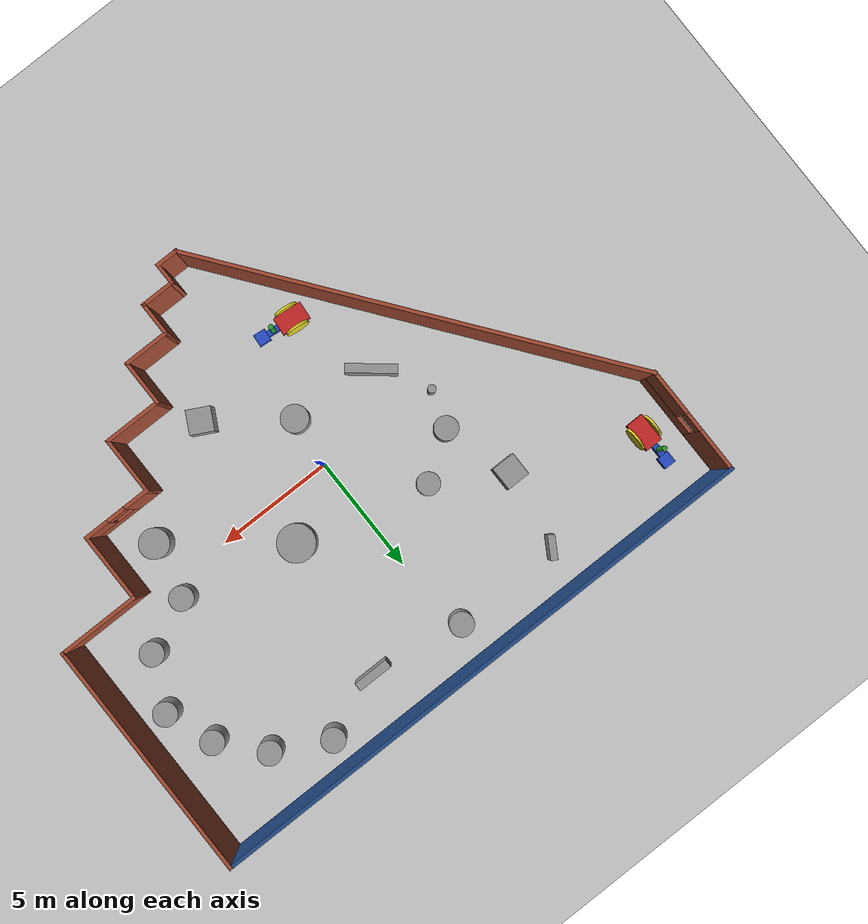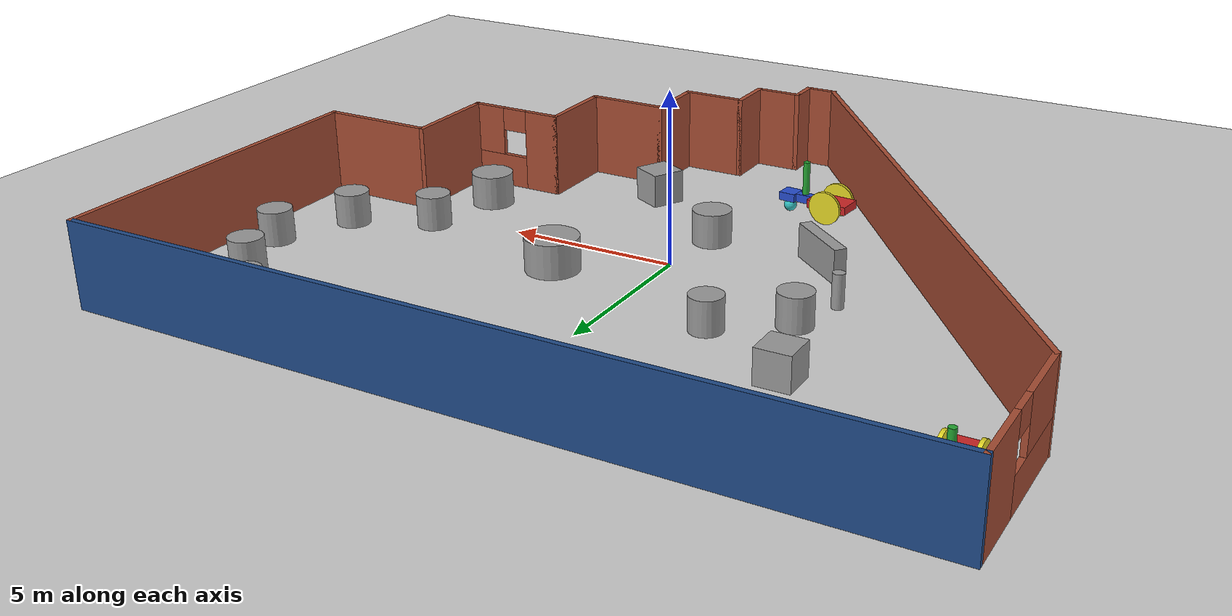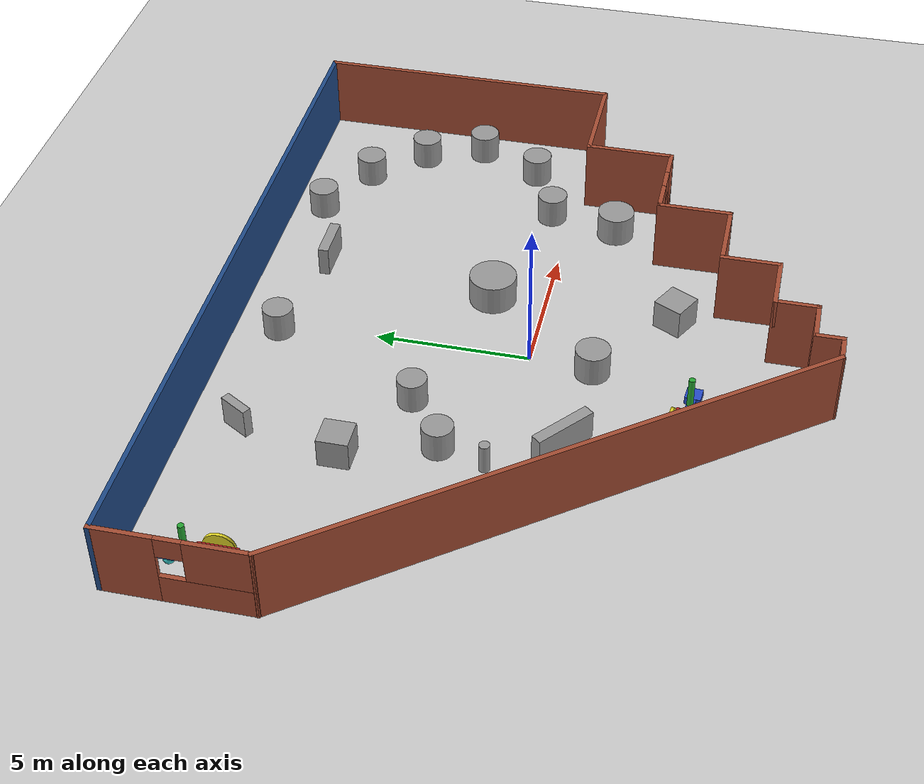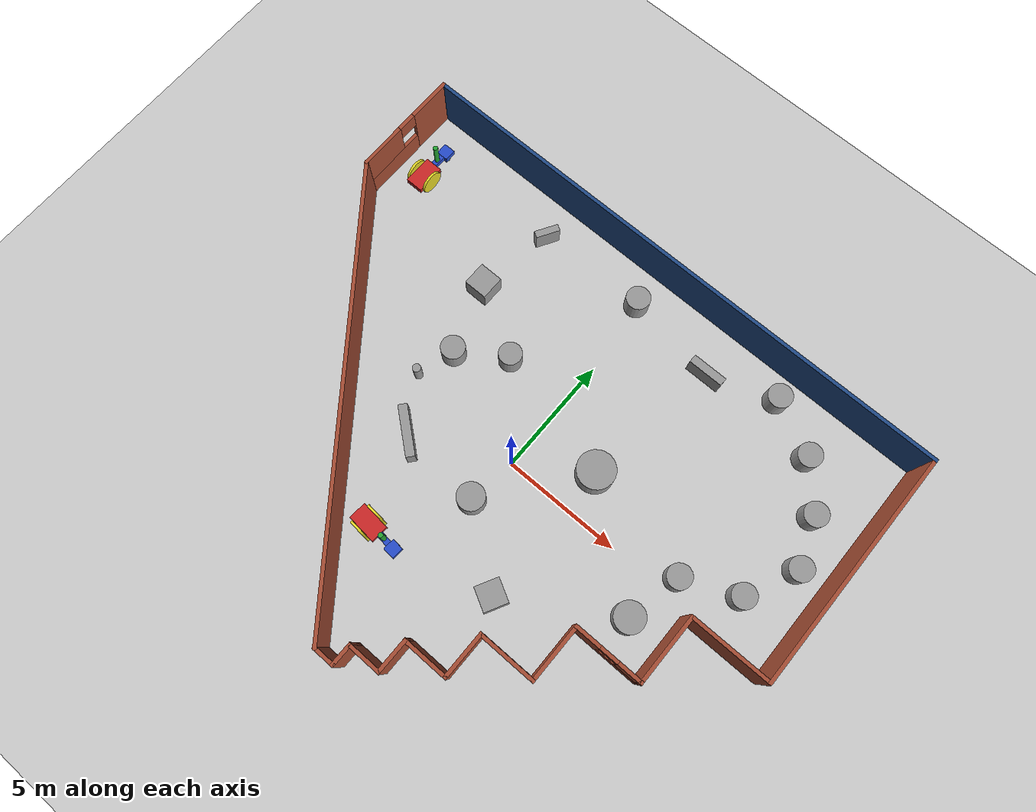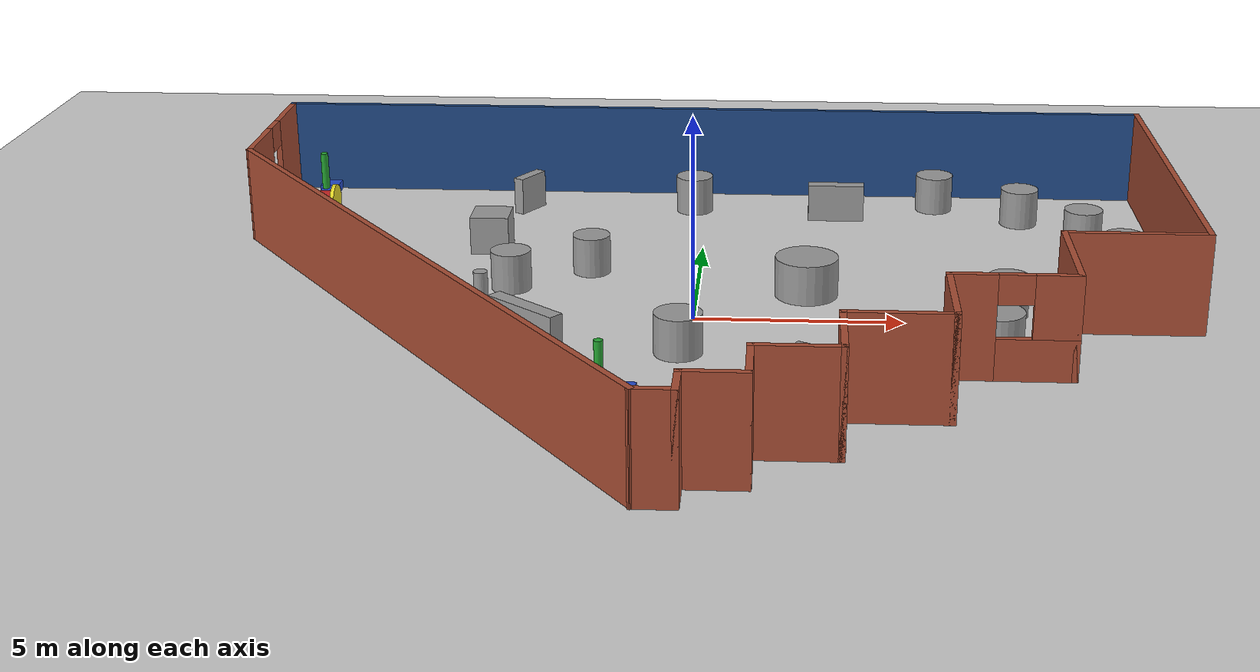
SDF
<sdf version="1.6">
 <world name="default">
  <light name="sun" type="directional">
   <pose>0 0 10 0 -0 0</pose>
   <diffuse>0.8 0.8 0.8 1</diffuse>
   <specular>0.2 0.2 0.2 1</specular>
   <attenuation>
    <range>1000</range>
    <constant>0.9</constant>
    <linear>0.01</linear>
    <quadratic>0.001</quadratic>
   </attenuation>
   <direction>-0.5 0.1 -0.9</direction>
  </light>
  <model name="ground_plane">
   <static>1</static>
   <link name="link">
    <collision name="collision">
     <geometry><plane><normal>0 0 1</normal><size>100 100</size></plane></geometry>
     <surface>
      <contact><collide_bitmask>65535</collide_bitmask></contact>
      <friction><ode><mu>100</mu><mu2>50</mu2></ode></friction>
     </surface>
    </collision>
    <visual name="visual">
     <cast_shadows>0</cast_shadows>
     <geometry><plane><normal>0 0 1</normal><size>100 100</size></plane></geometry>
     <material>
      <script><uri>file://media/materials/scripts/gazebo.material</uri><name>Gazebo/Grey</name></script>
     </material>
    </visual>
   </link>
  </model>
  <gravity>0 0 -9.8</gravity>
  <magnetic_field>6e-06 2.3e-05 -4.2e-05</magnetic_field>
  <atmosphere type="adiabatic"/>
  <physics name="default_physics" default="0" type="ode">
   <max_step_size>0.001</max_step_size>
   <real_time_factor>1</real_time_factor>
   <real_time_update_rate>1000</real_time_update_rate>
  </physics>
  <scene><ambient>0.4 0.4 0.4 1</ambient><background>0.7 0.7 0.7 1</background><shadows>1</shadows></scene>
  <audio><device>default</device></audio>
  <spherical_coordinates>
   <surface_model>EARTH_WGS84</surface_model>
   <latitude_deg>0</latitude_deg>
   <longitude_deg>0</longitude_deg>
   <elevation>0</elevation>
   <heading_deg>0</heading_deg>
  </spherical_coordinates>
  <model name="building_1">
   <pose>-0.033049 0.038892 0 0 -0 0</pose>
   <link name="Wall_0">
    <collision name="Wall_0_Collision">
     <geometry><box><size>1 0.15 2.5</size></box></geometry>
     <pose>0 0 1.25 0 -0 0</pose>
    </collision>
    <visual name="Wall_0_Visual">
     <pose>0 0 1.25 0 -0 0</pose>
     <geometry><box><size>1 0.15 2.5</size></box></geometry>
     <material>
      <script><uri>file://media/materials/scripts/gazebo.material</uri><name>Gazebo/Bricks</name></script>
      <ambient>1 1 1 1</ambient>
     </material>
     <meta><layer>0</layer></meta>
    </visual>
    <pose>-0.234942 -9.66003 0 0 -0 0</pose>
   </link>
   <link name="Wall_1">
    <collision name="Wall_1_Collision">
     <geometry><box><size>1 0.15 2.5</size></box></geometry>
     <pose>0 0 1.25 0 -0 0</pose>
    </collision>
    <visual name="Wall_1_Visual">
     <pose>0 0 1.25 0 -0 0</pose>
     <geometry><box><size>1 0.15 2.5</size></box></geometry>
     <material>
      <script><uri>file://media/materials/scripts/gazebo.material</uri><name>Gazebo/Bricks</name></script>
      <ambient>1 1 1 1</ambient>
     </material>
     <meta><layer>0</layer></meta>
    </visual>
    <pose>0.190057 -9.23503 0 0 -0 1.5708</pose>
   </link>
   <link name="Wall_10">
    <collision name="Wall_10_Collision">
     <geometry><box><size>3.5 0.15 2.5</size></box></geometry>
     <pose>0 0 1.25 0 -0 0</pose>
    </collision>
    <visual name="Wall_10_Visual">
     <pose>0 0 1.25 0 -0 0</pose>
     <geometry><box><size>3.5 0.15 2.5</size></box></geometry>
     <material>
      <script><uri>file://media/materials/scripts/gazebo.material</uri><name>Gazebo/Bricks</name></script>
      <ambient>1 1 1 1</ambient>
     </material>
     <meta><layer>0</layer></meta>
    </visual>
    <pose>10.2651 -0.410032 0 0 -0 0</pose>
   </link>
   <link name="Wall_11">
    <collision name="Wall_11_Collision">
     <geometry><box><size>10.25 0.15 2.5</size></box></geometry>
     <pose>0 0 1.25 0 -0 0</pose>
    </collision>
    <visual name="Wall_11_Visual">
     <pose>0 0 1.25 0 -0 0</pose>
     <geometry><box><size>10.25 0.15 2.5</size></box></geometry>
     <material>
      <script><uri>file://media/materials/scripts/gazebo.material</uri><name>Gazebo/Bricks</name></script>
      <ambient>1 1 1 1</ambient>
     </material>
     <meta><layer>0</layer></meta>
    </visual>
    <pose>11.9399 4.64006 0 0 -0 1.57083</pose>
   </link>
   <link name="Wall_12">
    <collision name="Wall_12_Collision">
     <geometry><box><size>24 0.15 2.5</size></box></geometry>
     <pose>0 0 1.25 0 -0 0</pose>
    </collision>
    <visual name="Wall_12_Visual">
     <pose>0 0 1.25 0 -0 0</pose>
     <geometry><box><size>24 0.15 2.5</size></box></geometry>
     <material>
      <script><uri>file://media/materials/scripts/gazebo.material</uri><name>Gazebo/Grey</name></script>
      <ambient>0.12549 0.290196 0.529412 1</ambient>
     </material>
     <meta><layer>0</layer></meta>
    </visual>
    <pose>0.014703 9.69015 0 0 -0 3.14159</pose>
   </link>
   <link name="Wall_13">
    <pose>-11.9101 7.39006 0 0 -0 -1.57072</pose>
    <visual name="Wall_13_Visual_0">
     <pose>-1.41316 0 1.25 0 -0 0</pose>
     <geometry><box><size>1.92368 0.15 2.5</size></box></geometry>
     <material>
      <script><uri>file://media/materials/scripts/gazebo.material</uri><name>Gazebo/Bricks</name></script>
      <ambient>1 1 1 1</ambient>
     </material>
     <meta><layer>0</layer></meta>
    </visual>
    <collision name="Wall_13_Collision_0">
     <geometry><box><size>1.92368 0.15 2.5</size></box></geometry>
     <pose>-1.41316 0 1.25 0 -0 0</pose>
    </collision>
    <visual name="Wall_13_Visual_1">
     <pose>0.96184 0 0.5 0 -0 0</pose>
     <geometry><box><size>2.82632 0.15 1</size></box></geometry>
     <material>
      <script><uri>file://media/materials/scripts/gazebo.material</uri><name>Gazebo/Bricks</name></script>
      <ambient>1 1 1 1</ambient>
     </material>
     <meta><layer>0</layer></meta>
    </visual>
    <collision name="Wall_13_Collision_1">
     <geometry><box><size>2.82632 0.15 1</size></box></geometry>
     <pose>0.96184 0 0.5 0 -0 0</pose>
    </collision>
    <visual name="Wall_13_Visual_2">
     <pose>1.36184 0 1.75 0 -0 0</pose>
     <geometry><box><size>2.02632 0.15 1.5</size></box></geometry>
     <material>
      <script><uri>file://media/materials/scripts/gazebo.material</uri><name>Gazebo/Bricks</name></script>
      <ambient>1 1 1 1</ambient>
     </material>
     <meta><layer>0</layer></meta>
    </visual>
    <collision name="Wall_13_Collision_2">
     <geometry><box><size>2.02632 0.15 1.5</size></box></geometry>
     <pose>1.36184 0 1.75 0 -0 0</pose>
    </collision>
    <visual name="Wall_13_Visual_3">
     <pose>-0.051321 0 2.15 0 -0 0</pose>
     <geometry><box><size>0.8 0.15 0.7</size></box></geometry>
     <material>
      <script><uri>file://media/materials/scripts/gazebo.material</uri><name>Gazebo/Bricks</name></script>
      <ambient>1 1 1 1</ambient>
     </material>
     <meta><layer>0</layer></meta>
    </visual>
    <collision name="Wall_13_Collision_3">
     <geometry><box><size>0.8 0.15 0.7</size></box></geometry>
     <pose>-0.051321 0 2.15 0 -0 0</pose>
    </collision>
   </link>
   <link name="Wall_14">
    <collision name="Wall_14_Collision">
     <geometry><box><size>18.7006 0.15 2.5</size></box></geometry>
     <pose>0 0 1.25 0 -0 0</pose>
    </collision>
    <visual name="Wall_14_Visual">
     <pose>0 0 1.25 0 -0 0</pose>
     <geometry><box><size>18.7006 0.15 2.5</size></box></geometry>
     <material>
      <script><uri>file://media/materials/scripts/gazebo.material</uri><name>Gazebo/Bricks</name></script>
      <ambient>1 1 1 1</ambient>
     </material>
     <meta><layer>0</layer></meta>
    </visual>
    <pose>-6.28494 -2.28503 0 0 -0 -0.919209</pose>
   </link>
   <link name="Wall_2">
    <collision name="Wall_2_Collision">
     <geometry><box><size>1.5 0.15 2.5</size></box></geometry>
     <pose>0 0 1.25 0 -0 0</pose>
    </collision>
    <visual name="Wall_2_Visual">
     <pose>0 0 1.25 0 -0 0</pose>
     <geometry><box><size>1.5 0.15 2.5</size></box></geometry>
     <material>
      <script><uri>file://media/materials/scripts/gazebo.material</uri><name>Gazebo/Bricks</name></script>
      <ambient>1 1 1 1</ambient>
     </material>
     <meta><layer>0</layer></meta>
    </visual>
    <pose>0.865057 -8.81003 0 0 -0 0</pose>
   </link>
   <link name="Wall_3">
    <collision name="Wall_3_Collision">
     <geometry><box><size>1.5 0.15 2.5</size></box></geometry>
     <pose>0 0 1.25 0 -0 0</pose>
    </collision>
    <visual name="Wall_3_Visual">
     <pose>0 0 1.25 0 -0 0</pose>
     <geometry><box><size>1.5 0.15 2.5</size></box></geometry>
     <material>
      <script><uri>file://media/materials/scripts/gazebo.material</uri><name>Gazebo/Bricks</name></script>
      <ambient>1 1 1 1</ambient>
     </material>
     <meta><layer>0</layer></meta>
    </visual>
    <pose>1.54006 -8.13503 0 0 -0 1.5708</pose>
   </link>
   <link name="Wall_4">
    <collision name="Wall_4_Collision">
     <geometry><box><size>2 0.15 2.5</size></box></geometry>
     <pose>0 0 1.25 0 -0 0</pose>
    </collision>
    <visual name="Wall_4_Visual">
     <pose>0 0 1.25 0 -0 0</pose>
     <geometry><box><size>2 0.15 2.5</size></box></geometry>
     <material>
      <script><uri>file://media/materials/scripts/gazebo.material</uri><name>Gazebo/Bricks</name></script>
      <ambient>1 1 1 1</ambient>
     </material>
     <meta><layer>0</layer></meta>
    </visual>
    <pose>2.46506 -7.46003 0 0 -0 0</pose>
   </link>
   <link name="Wall_5">
    <collision name="Wall_5_Collision">
     <geometry><box><size>2 0.15 2.5</size></box></geometry>
     <pose>0 0 1.25 0 -0 0</pose>
    </collision>
    <visual name="Wall_5_Visual">
     <pose>0 0 1.25 0 -0 0</pose>
     <geometry><box><size>2 0.15 2.5</size></box></geometry>
     <material>
      <script><uri>file://media/materials/scripts/gazebo.material</uri><name>Gazebo/Bricks</name></script>
      <ambient>1 1 1 1</ambient>
     </material>
     <meta><layer>0</layer></meta>
    </visual>
    <pose>3.39006 -6.53503 0 0 -0 1.5708</pose>
   </link>
   <link name="Wall_6">
    <collision name="Wall_6_Collision">
     <geometry><box><size>2.5 0.15 2.5</size></box></geometry>
     <pose>0 0 1.25 0 -0 0</pose>
    </collision>
    <visual name="Wall_6_Visual">
     <pose>0 0 1.25 0 -0 0</pose>
     <geometry><box><size>2.5 0.15 2.5</size></box></geometry>
     <material>
      <script><uri>file://media/materials/scripts/gazebo.material</uri><name>Gazebo/Bricks</name></script>
      <ambient>1 1 1 1</ambient>
     </material>
     <meta><layer>0</layer></meta>
    </visual>
    <pose>4.56506 -5.61003 0 0 -0 0</pose>
   </link>
   <link name="Wall_7">
    <collision name="Wall_7_Collision">
     <geometry><box><size>2.5 0.15 2.5</size></box></geometry>
     <pose>0 0 1.25 0 -0 0</pose>
    </collision>
    <visual name="Wall_7_Visual">
     <pose>0 0 1.25 0 -0 0</pose>
     <geometry><box><size>2.5 0.15 2.5</size></box></geometry>
     <material>
      <script><uri>file://media/materials/scripts/gazebo.material</uri><name>Gazebo/Bricks</name></script>
      <ambient>1 1 1 1</ambient>
     </material>
     <meta><layer>0</layer></meta>
    </visual>
    <pose>5.74006 -4.43503 0 0 -0 1.5708</pose>
   </link>
   <link name="Wall_8">
    <pose>7.16506 -3.26003 0 0 -0 0</pose>
    <visual name="Wall_8_Visual_0">
     <pose>-0.930199 0 1.25 0 -0 0</pose>
     <geometry><box><size>1.1396 0.15 2.5</size></box></geometry>
     <material>
      <script><uri>file://media/materials/scripts/gazebo.material</uri><name>Gazebo/Bricks</name></script>
      <ambient>1 1 1 1</ambient>
     </material>
     <meta><layer>0</layer></meta>
    </visual>
    <collision name="Wall_8_Collision_0">
     <geometry><box><size>1.1396 0.15 2.5</size></box></geometry>
     <pose>-0.930199 0 1.25 0 -0 0</pose>
    </collision>
    <visual name="Wall_8_Visual_1">
     <pose>0.569801 0 0.5 0 -0 0</pose>
     <geometry><box><size>1.8604 0.15 1</size></box></geometry>
     <material>
      <script><uri>file://media/materials/scripts/gazebo.material</uri><name>Gazebo/Bricks</name></script>
      <ambient>1 1 1 1</ambient>
     </material>
     <meta><layer>0</layer></meta>
    </visual>
    <collision name="Wall_8_Collision_1">
     <geometry><box><size>1.8604 0.15 1</size></box></geometry>
     <pose>0.569801 0 0.5 0 -0 0</pose>
    </collision>
    <visual name="Wall_8_Visual_2">
     <pose>0.969801 0 1.75 0 -0 0</pose>
     <geometry><box><size>1.0604 0.15 1.5</size></box></geometry>
     <material>
      <script><uri>file://media/materials/scripts/gazebo.material</uri><name>Gazebo/Bricks</name></script>
      <ambient>1 1 1 1</ambient>
     </material>
     <meta><layer>0</layer></meta>
    </visual>
    <collision name="Wall_8_Collision_2">
     <geometry><box><size>1.0604 0.15 1.5</size></box></geometry>
     <pose>0.969801 0 1.75 0 -0 0</pose>
    </collision>
    <visual name="Wall_8_Visual_3">
     <pose>0.039603 0 2.15 0 -0 0</pose>
     <geometry><box><size>0.8 0.15 0.7</size></box></geometry>
     <material>
      <script><uri>file://media/materials/scripts/gazebo.material</uri><name>Gazebo/Bricks</name></script>
      <ambient>1 1 1 1</ambient>
     </material>
     <meta><layer>0</layer></meta>
    </visual>
    <collision name="Wall_8_Collision_3">
     <geometry><box><size>0.8 0.15 0.7</size></box></geometry>
     <pose>0.039603 0 2.15 0 -0 0</pose>
    </collision>
   </link>
   <link name="Wall_9">
    <collision name="Wall_9_Collision">
     <geometry><box><size>3 0.15 2.5</size></box></geometry>
     <pose>0 0 1.25 0 -0 0</pose>
    </collision>
    <visual name="Wall_9_Visual">
     <pose>0 0 1.25 0 -0 0</pose>
     <geometry><box><size>3 0.15 2.5</size></box></geometry>
     <material>
      <script><uri>file://media/materials/scripts/gazebo.material</uri><name>Gazebo/Bricks</name></script>
      <ambient>1 1 1 1</ambient>
     </material>
     <meta><layer>0</layer></meta>
    </visual>
    <pose>8.59006 -1.83503 0 0 -0 1.5708</pose>
   </link>
   <static>1</static>
  </model>
  <model name="unit_box">
   <pose>-4.98127 8.04956 0.49999 0 1.1e-05 -0.5401</pose>
   <link name="link">
    <inertial>
     <mass>1</mass>
     <inertia>
      <ixx>0.166667</ixx>
      <ixy>0</ixy>
      <ixz>0</ixz>
      <iyy>0.166667</iyy>
      <iyz>0</iyz>
      <izz>0.166667</izz>
     </inertia>
    </inertial>
    <collision name="collision"><geometry><box><size>0.290327 1 1</size></box></geometry></collision>
    <visual name="visual">
     <geometry><box><size>0.290327 1 1</size></box></geometry>
     <material>
      <script><name>Gazebo/Grey</name><uri>file://media/materials/scripts/gazebo.material</uri></script>
     </material>
    </visual>
   </link>
  </model>
  <model name="unit_cylinder">
   <pose>2.69131 1.76633 0.499996 2e-06 -0 0</pose>
   <link name="link">
    <inertial>
     <mass>1</mass>
     <inertia><ixx>0.145833</ixx><ixy>0</ixy><ixz>0</ixz><iyy>0.145833</iyy><iyz>0</iyz><izz>0.125</izz></inertia>
    </inertial>
    <collision name="collision">
     <geometry><cylinder><radius>0.777834</radius><length>1</length></cylinder></geometry>
    </collision>
    <visual name="visual">
     <geometry><cylinder><radius>0.777834</radius><length>1</length></cylinder></geometry>
     <material>
      <script><name>Gazebo/Grey</name><uri>file://media/materials/scripts/gazebo.material</uri></script>
     </material>
    </visual>
   </link>
  </model>
  <model name="unit_cylinder_0">
   <pose>-5.13556 0.334383 0.499997 1e-06 1e-06 0</pose>
   <link name="link">
    <inertial>
     <mass>1</mass>
     <inertia><ixx>0.145833</ixx><ixy>0</ixy><ixz>0</ixz><iyy>0.145833</iyy><iyz>0</iyz><izz>0.125</izz></inertia>
    </inertial>
    <collision name="collision">
     <geometry><cylinder><radius>0.172347</radius><length>1</length></cylinder></geometry>
    </collision>
    <visual name="visual">
     <geometry><cylinder><radius>0.172347</radius><length>1</length></cylinder></geometry>
     <material>
      <script><name>Gazebo/Grey</name><uri>file://media/materials/scripts/gazebo.material</uri></script>
     </material>
    </visual>
   </link>
  </model>
  <model name="unit_cylinder_2">
   <pose>-4.62482 1.8807 0.499999 1e-06 1e-06 -0.002553</pose>
   <link name="link">
    <inertial>
     <mass>1</mass>
     <inertia><ixx>0.145833</ixx><ixy>0</ixy><ixz>0</ixz><iyy>0.145833</iyy><iyz>0</iyz><izz>0.125</izz></inertia>
    </inertial>
    <collision name="collision">
     <geometry><cylinder><radius>0.5</radius><length>1</length></cylinder></geometry>
    </collision>
    <visual name="visual">
     <geometry><cylinder><radius>0.5</radius><length>1</length></cylinder></geometry>
     <material>
      <script><name>Gazebo/Grey</name><uri>file://media/materials/scripts/gazebo.material</uri></script>
     </material>
    </visual>
   </link>
  </model>
  <model name="unit_cylinder_3">
   <pose>-0.243996 -2.06692 0.499995 -4e-06 -4e-06 6.4e-05</pose>
   <link name="link">
    <inertial>
     <mass>1</mass>
     <inertia><ixx>0.145833</ixx><ixy>0</ixy><ixz>0</ixz><iyy>0.145833</iyy><iyz>0</iyz><izz>0.125</izz></inertia>
    </inertial>
    <collision name="collision">
     <geometry><cylinder><radius>0.56716</radius><length>1</length></cylinder></geometry>
    </collision>
    <visual name="visual">
     <geometry><cylinder><radius>0.56716</radius><length>1</length></cylinder></geometry>
     <material>
      <script><name>Gazebo/Grey</name><uri>file://media/materials/scripts/gazebo.material</uri></script>
     </material>
    </visual>
   </link>
  </model>
  <model name="unit_cylinder_4">
   <pose>-2.74693 3.13918 0.499996 0 -0 0</pose>
   <link name="link">
    <inertial>
     <mass>1</mass>
     <inertia><ixx>0.145833</ixx><ixy>0</ixy><ixz>0</ixz><iyy>0.145833</iyy><iyz>0</iyz><izz>0.125</izz></inertia>
    </inertial>
    <collision name="collision">
     <geometry><cylinder><radius>0.476294</radius><length>1</length></cylinder></geometry>
    </collision>
    <visual name="visual">
     <geometry><cylinder><radius>0.476294</radius><length>1</length></cylinder></geometry>
     <material>
      <script><name>Gazebo/Grey</name><uri>file://media/materials/scripts/gazebo.material</uri></script>
     </material>
    </visual>
   </link>
  </model>
  <model name="unit_box_1">
   <pose>-3.78085 -1.7556 0.5 0 0 -0.688027</pose>
   <link name="link">
    <inertial>
     <mass>1</mass>
     <inertia>
      <ixx>0.166667</ixx>
      <ixy>0</ixy>
      <ixz>0</ixz>
      <iyy>0.166667</iyy>
      <iyz>0</iyz>
      <izz>0.166667</izz>
     </inertia>
    </inertial>
    <collision name="collision"><geometry><box><size>2.09176 0.371918 1</size></box></geometry></collision>
    <visual name="visual">
     <geometry><box><size>2.09176 0.371918 1</size></box></geometry>
     <material>
      <script><name>Gazebo/Grey</name><uri>file://media/materials/scripts/gazebo.material</uri></script>
     </material>
    </visual>
   </link>
  </model>
  <model name="unit_box_7">
   <pose>-5.54043 4.74663 0.499995 0 -1e-05 0</pose>
   <link name="link">
    <inertial>
     <mass>1</mass>
     <inertia>
      <ixx>0.166667</ixx>
      <ixy>0</ixy>
      <ixz>0</ixz>
      <iyy>0.166667</iyy>
      <iyz>0</iyz>
      <izz>0.166667</izz>
     </inertia>
    </inertial>
    <collision name="collision"><geometry><box><size>1 1 1</size></box></geometry></collision>
    <visual name="visual">
     <geometry><box><size>1 1 1</size></box></geometry>
     <material>
      <script><name>Gazebo/Grey</name><uri>file://media/materials/scripts/gazebo.material</uri></script>
     </material>
    </visual>
   </link>
  </model>
  <model name="model_0">
   <link name="link_1">
    <inertial>
     <mass>1</mass>
     <inertia>
      <ixx>0.166667</ixx>
      <ixy>0</ixy>
      <ixz>0</ixz>
      <iyy>0.166667</iyy>
      <iyz>0</iyz>
      <izz>0.166667</izz>
     </inertia>
    </inertial>
    <pose>0.002679 -0.035833 0.401131 0 -0 0</pose>
    <visual name="visual">
     <geometry><box><size>0.75 1.25 0.25</size></box></geometry>
     <material>
      <script><uri>file://media/materials/scripts/gazebo.material</uri><name>Gazebo/Red</name></script>
     </material>
    </visual>
    <collision name="collision">
     <geometry><box><size>0.75 1.25 0.25</size></box></geometry>
     <surface>
      <friction>
       <ode><mu>1</mu><mu2>1</mu2><fdir1>0 0 0</fdir1><slip1>0</slip1><slip2>0</slip2></ode>
       <torsional>
        <coefficient>1</coefficient>
        <patch_radius>0</patch_radius>
        <surface_radius>0</surface_radius>
        <use_patch_radius>1</use_patch_radius>
        <ode><slip>0</slip></ode>
       </torsional>
      </friction>
      <bounce><restitution_coefficient>0</restitution_coefficient><threshold>1e+06</threshold></bounce>
      <contact>
       <collide_without_contact>0</collide_without_contact>
       <collide_without_contact_bitmask>1</collide_without_contact_bitmask>
       <collide_bitmask>1</collide_bitmask>
       <ode>
        <soft_cfm>0</soft_cfm>
        <soft_erp>0.2</soft_erp>
        <kp>1e+13</kp>
        <kd>1</kd>
        <max_vel>0.01</max_vel>
        <min_depth>0</min_depth>
       </ode>
       <bullet>
        <split_impulse>1</split_impulse>
        <split_impulse_penetration_threshold>-0.01</split_impulse_penetration_threshold>
        <soft_cfm>0</soft_cfm>
        <soft_erp>0.2</soft_erp>
        <kp>1e+13</kp>
        <kd>1</kd>
       </bullet>
      </contact>
     </surface>
    </collision>
   </link>
   <link name="link_2_clone">
    <inertial>
     <mass>1</mass>
     <inertia><ixx>0.145833</ixx><ixy>0</ixy><ixz>0</ixz><iyy>0.145833</iyy><iyz>0</iyz><izz>0.125</izz></inertia>
    </inertial>
    <pose>-0.422418 -0.035833 0.401131 1.5707 0 1.5707</pose>
    <visual name="visual">
     <geometry><cylinder><radius>0.5</radius><length>0.1</length></cylinder></geometry>
     <material>
      <script><uri>file://media/materials/scripts/gazebo.material</uri><name>Gazebo/Yellow</name></script>
     </material>
    </visual>
    <collision name="collision">
     <geometry><cylinder><radius>0.5</radius><length>0.1</length></cylinder></geometry>
     <surface>
      <friction>
       <ode><mu>1</mu><mu2>1</mu2><fdir1>0 0 0</fdir1><slip1>0</slip1><slip2>0</slip2></ode>
       <torsional>
        <coefficient>1</coefficient>
        <patch_radius>0</patch_radius>
        <surface_radius>0</surface_radius>
        <use_patch_radius>1</use_patch_radius>
        <ode><slip>0</slip></ode>
       </torsional>
      </friction>
      <bounce><restitution_coefficient>0</restitution_coefficient><threshold>1e+06</threshold></bounce>
      <contact>
       <collide_without_contact>0</collide_without_contact>
       <collide_without_contact_bitmask>1</collide_without_contact_bitmask>
       <collide_bitmask>1</collide_bitmask>
       <ode>
        <soft_cfm>0</soft_cfm>
        <soft_erp>0.2</soft_erp>
        <kp>1e+13</kp>
        <kd>1</kd>
        <max_vel>0.01</max_vel>
        <min_depth>0</min_depth>
       </ode>
       <bullet>
        <split_impulse>1</split_impulse>
        <split_impulse_penetration_threshold>-0.01</split_impulse_penetration_threshold>
        <soft_cfm>0</soft_cfm>
        <soft_erp>0.2</soft_erp>
        <kp>1e+13</kp>
        <kd>1</kd>
       </bullet>
      </contact>
     </surface>
    </collision>
   </link>
   <link name="link_2_clone_clone">
    <inertial>
     <mass>1</mass>
     <inertia><ixx>0.145833</ixx><ixy>0</ixy><ixz>0</ixz><iyy>0.145833</iyy><iyz>0</iyz><izz>0.125</izz></inertia>
    </inertial>
    <pose>0.427775 -0.035833 0.401131 1.5707 0 1.5707</pose>
    <visual name="visual">
     <geometry><cylinder><radius>0.5</radius><length>0.1</length></cylinder></geometry>
     <material>
      <script><uri>file://media/materials/scripts/gazebo.material</uri><name>Gazebo/Yellow</name></script>
     </material>
    </visual>
    <collision name="collision">
     <geometry><cylinder><radius>0.5</radius><length>0.1</length></cylinder></geometry>
     <surface>
      <friction>
       <ode><mu>1</mu><mu2>1</mu2><fdir1>0 0 0</fdir1><slip1>0</slip1><slip2>0</slip2></ode>
       <torsional>
        <coefficient>1</coefficient>
        <patch_radius>0</patch_radius>
        <surface_radius>0</surface_radius>
        <use_patch_radius>1</use_patch_radius>
        <ode><slip>0</slip></ode>
       </torsional>
      </friction>
      <bounce><restitution_coefficient>0</restitution_coefficient><threshold>1e+06</threshold></bounce>
      <contact>
       <collide_without_contact>0</collide_without_contact>
       <collide_without_contact_bitmask>1</collide_without_contact_bitmask>
       <collide_bitmask>1</collide_bitmask>
       <ode>
        <soft_cfm>0</soft_cfm>
        <soft_erp>0.2</soft_erp>
        <kp>1e+13</kp>
        <kd>1</kd>
        <max_vel>0.01</max_vel>
        <min_depth>0</min_depth>
       </ode>
       <bullet>
        <split_impulse>1</split_impulse>
        <split_impulse_penetration_threshold>-0.01</split_impulse_penetration_threshold>
        <soft_cfm>0</soft_cfm>
        <soft_erp>0.2</soft_erp>
        <kp>1e+13</kp>
        <kd>1</kd>
       </bullet>
      </contact>
     </surface>
    </collision>
   </link>
   <link name="link_3">
    <inertial>
     <mass>1</mass>
     <inertia>
      <ixx>0.166667</ixx>
      <ixy>0</ixy>
      <ixz>0</ixz>
      <iyy>0.166667</iyy>
      <iyz>0</iyz>
      <izz>0.166667</izz>
     </inertia>
    </inertial>
    <pose>-0.004821 0.839167 0.401131 0 -0 0</pose>
    <visual name="visual">
     <geometry><box><size>0.25 0.5 0.25</size></box></geometry>
     <material>
      <script><uri>file://media/materials/scripts/gazebo.material</uri><name>Gazebo/Blue</name></script>
     </material>
    </visual>
    <collision name="collision">
     <geometry><box><size>0.25 0.5 0.25</size></box></geometry>
     <surface>
      <friction>
       <ode><mu>1</mu><mu2>1</mu2><fdir1>0 0 0</fdir1><slip1>0</slip1><slip2>0</slip2></ode>
       <torsional>
        <coefficient>1</coefficient>
        <patch_radius>0</patch_radius>
        <surface_radius>0</surface_radius>
        <use_patch_radius>1</use_patch_radius>
        <ode><slip>0</slip></ode>
       </torsional>
      </friction>
      <bounce><restitution_coefficient>0</restitution_coefficient><threshold>1e+06</threshold></bounce>
      <contact>
       <collide_without_contact>0</collide_without_contact>
       <collide_without_contact_bitmask>1</collide_without_contact_bitmask>
       <collide_bitmask>1</collide_bitmask>
       <ode>
        <soft_cfm>0</soft_cfm>
        <soft_erp>0.2</soft_erp>
        <kp>1e+13</kp>
        <kd>1</kd>
        <max_vel>0.01</max_vel>
        <min_depth>0</min_depth>
       </ode>
       <bullet>
        <split_impulse>1</split_impulse>
        <split_impulse_penetration_threshold>-0.01</split_impulse_penetration_threshold>
        <soft_cfm>0</soft_cfm>
        <soft_erp>0.2</soft_erp>
        <kp>1e+13</kp>
        <kd>1</kd>
       </bullet>
      </contact>
     </surface>
    </collision>
   </link>
   <link name="link_3_clone">
    <inertial>
     <mass>1</mass>
     <inertia>
      <ixx>0.166667</ixx>
      <ixy>0</ixy>
      <ixz>0</ixz>
      <iyy>0.166667</iyy>
      <iyz>0</iyz>
      <izz>0.166667</izz>
     </inertia>
    </inertial>
    <pose>0.002679 1.33917 0.401131 0 -0 0</pose>
    <visual name="visual">
     <geometry><box><size>0.5 0.5 0.25</size></box></geometry>
     <material>
      <script><uri>file://media/materials/scripts/gazebo.material</uri><name>Gazebo/Blue</name></script>
     </material>
    </visual>
    <collision name="collision">
     <geometry><box><size>0.5 0.5 0.25</size></box></geometry>
     <surface>
      <friction>
       <ode><mu>1</mu><mu2>1</mu2><fdir1>0 0 0</fdir1><slip1>0</slip1><slip2>0</slip2></ode>
       <torsional>
        <coefficient>1</coefficient>
        <patch_radius>0</patch_radius>
        <surface_radius>0</surface_radius>
        <use_patch_radius>1</use_patch_radius>
        <ode><slip>0</slip></ode>
       </torsional>
      </friction>
      <bounce><restitution_coefficient>0</restitution_coefficient><threshold>1e+06</threshold></bounce>
      <contact>
       <collide_without_contact>0</collide_without_contact>
       <collide_without_contact_bitmask>1</collide_without_contact_bitmask>
       <collide_bitmask>1</collide_bitmask>
       <ode>
        <soft_cfm>0</soft_cfm>
        <soft_erp>0.2</soft_erp>
        <kp>1e+13</kp>
        <kd>1</kd>
        <max_vel>0.01</max_vel>
        <min_depth>0</min_depth>
       </ode>
       <bullet>
        <split_impulse>1</split_impulse>
        <split_impulse_penetration_threshold>-0.01</split_impulse_penetration_threshold>
        <soft_cfm>0</soft_cfm>
        <soft_erp>0.2</soft_erp>
        <kp>1e+13</kp>
        <kd>1</kd>
       </bullet>
      </contact>
     </surface>
    </collision>
   </link>
   <link name="link_4">
    <inertial>
     <mass>1</mass>
     <inertia><ixx>0.1</ixx><ixy>0</ixy><ixz>0</ixz><iyy>0.1</iyy><iyz>0</iyz><izz>0.1</izz></inertia>
    </inertial>
    <pose>0.002679 1.33917 0.088631 0 -0 0</pose>
    <visual name="visual">
     <geometry><sphere><radius>0.1875</radius></sphere></geometry>
     <material>
      <script><uri>file://media/materials/scripts/gazebo.material</uri><name>Gazebo/Turquoise</name></script>
     </material>
    </visual>
    <collision name="collision">
     <geometry><sphere><radius>0.1875</radius></sphere></geometry>
     <surface>
      <friction>
       <ode><mu>1</mu><mu2>1</mu2><fdir1>0 0 0</fdir1><slip1>0</slip1><slip2>0</slip2></ode>
       <torsional>
        <coefficient>1</coefficient>
        <patch_radius>0</patch_radius>
        <surface_radius>0</surface_radius>
        <use_patch_radius>1</use_patch_radius>
        <ode><slip>0</slip></ode>
       </torsional>
      </friction>
      <bounce><restitution_coefficient>0</restitution_coefficient><threshold>1e+06</threshold></bounce>
      <contact>
       <collide_without_contact>0</collide_without_contact>
       <collide_without_contact_bitmask>1</collide_without_contact_bitmask>
       <collide_bitmask>1</collide_bitmask>
       <ode>
        <soft_cfm>0</soft_cfm>
        <soft_erp>0.2</soft_erp>
        <kp>1e+13</kp>
        <kd>1</kd>
        <max_vel>0.01</max_vel>
        <min_depth>0</min_depth>
       </ode>
       <bullet>
        <split_impulse>1</split_impulse>
        <split_impulse_penetration_threshold>-0.01</split_impulse_penetration_threshold>
        <soft_cfm>0</soft_cfm>
        <soft_erp>0.2</soft_erp>
        <kp>1e+13</kp>
        <kd>1</kd>
       </bullet>
      </contact>
     </surface>
    </collision>
   </link>
   <link name="link_5">
    <inertial>
     <mass>1</mass>
     <inertia><ixx>0.145833</ixx><ixy>0</ixy><ixz>0</ixz><iyy>0.145833</iyy><iyz>0</iyz><izz>0.125</izz></inertia>
    </inertial>
    <pose>-0.017321 0.819167 1.04113 0 -0 0</pose>
    <visual name="visual">
     <geometry><cylinder><radius>0.1</radius><length>1</length></cylinder></geometry>
     <material>
      <script><uri>file://media/materials/scripts/gazebo.material</uri><name>Gazebo/Green</name></script>
     </material>
    </visual>
    <collision name="collision">
     <geometry><cylinder><radius>0.1</radius><length>1</length></cylinder></geometry>
     <surface>
      <friction>
       <ode><mu>1</mu><mu2>1</mu2><fdir1>0 0 0</fdir1><slip1>0</slip1><slip2>0</slip2></ode>
       <torsional>
        <coefficient>1</coefficient>
        <patch_radius>0</patch_radius>
        <surface_radius>0</surface_radius>
        <use_patch_radius>1</use_patch_radius>
        <ode><slip>0</slip></ode>
       </torsional>
      </friction>
      <bounce><restitution_coefficient>0</restitution_coefficient><threshold>1e+06</threshold></bounce>
      <contact>
       <collide_without_contact>0</collide_without_contact>
       <collide_without_contact_bitmask>1</collide_without_contact_bitmask>
       <collide_bitmask>1</collide_bitmask>
       <ode>
        <soft_cfm>0</soft_cfm>
        <soft_erp>0.2</soft_erp>
        <kp>1e+13</kp>
        <kd>1</kd>
        <max_vel>0.01</max_vel>
        <min_depth>0</min_depth>
       </ode>
       <bullet>
        <split_impulse>1</split_impulse>
        <split_impulse_penetration_threshold>-0.01</split_impulse_penetration_threshold>
        <soft_cfm>0</soft_cfm>
        <soft_erp>0.2</soft_erp>
        <kp>1e+13</kp>
        <kd>1</kd>
       </bullet>
      </contact>
     </surface>
    </collision>
   </link>
   <joint name="link_1_JOINT_0" type="revolute">
    <parent>link_1</parent>
    <child>link_2_clone_clone</child>
    <axis>
     <xyz>0 0 1</xyz>
     <use_parent_model_frame>0</use_parent_model_frame>
     <limit>
      <lower>-1.79769e+308</lower>
      <upper>1.79769e+308</upper>
      <effort>-1</effort>
      <velocity>-1</velocity>
     </limit>
     <dynamics>
      <spring_reference>0</spring_reference>
      <spring_stiffness>0</spring_stiffness>
      <damping>0</damping>
     </dynamics>
    </axis>
    <physics>
     <ode><limit><cfm>0</cfm><erp>0.2</erp></limit><suspension><cfm>0</cfm><erp>0.2</erp></suspension></ode>
    </physics>
   </joint>
   <joint name="link_1_JOINT_1" type="revolute">
    <parent>link_1</parent>
    <child>link_2_clone</child>
    <axis>
     <xyz>0 0 1</xyz>
     <use_parent_model_frame>0</use_parent_model_frame>
     <limit>
      <lower>-1.79769e+308</lower>
      <upper>1.79769e+308</upper>
      <effort>-1</effort>
      <velocity>-1</velocity>
     </limit>
     <dynamics>
      <spring_reference>0</spring_reference>
      <spring_stiffness>0</spring_stiffness>
      <damping>0</damping>
     </dynamics>
    </axis>
    <physics>
     <ode><limit><cfm>0</cfm><erp>0.2</erp></limit><suspension><cfm>0</cfm><erp>0.2</erp></suspension></ode>
    </physics>
   </joint>
   <joint name="link_1_JOINT_3" type="fixed">
    <parent>link_1</parent>
    <child>link_3</child>
    <physics>
     <ode><limit><cfm>0</cfm><erp>0.2</erp></limit><suspension><cfm>0</cfm><erp>0.2</erp></suspension></ode>
    </physics>
   </joint>
   <joint name="link_3_JOINT_4" type="fixed">
    <parent>link_3</parent>
    <child>link_3_clone</child>
    <physics>
     <ode><limit><cfm>0</cfm><erp>0.2</erp></limit><suspension><cfm>0</cfm><erp>0.2</erp></suspension></ode>
    </physics>
   </joint>
   <joint name="link_3_JOINT_6" type="fixed">
    <parent>link_3</parent>
    <child>link_5</child>
    <physics>
     <ode><limit><cfm>0</cfm><erp>0.2</erp></limit><suspension><cfm>0</cfm><erp>0.2</erp></suspension></ode>
    </physics>
   </joint>
   <joint name="link_3_clone_JOINT_5" type="ball">
    <parent>link_3_clone</parent>
    <child>link_4</child>
    <physics>
     <ode><limit><cfm>0</cfm><erp>0.2</erp></limit><suspension><cfm>0</cfm><erp>0.2</erp></suspension></ode>
    </physics>
   </joint>
   <static>0</static>
   <pose>-2.53871 -5.26339 0.098873 -3e-06 3e-06 -1.65793</pose>
  </model>
  <model name="model_1">
   <link name="link_1">
    <inertial>
     <mass>1</mass>
     <inertia>
      <ixx>0.166667</ixx>
      <ixy>0</ixy>
      <ixz>0</ixz>
      <iyy>0.166667</iyy>
      <iyz>0</iyz>
      <izz>0.166667</izz>
     </inertia>
    </inertial>
    <pose>0.002679 -0.035833 0.401131 0 -0 0</pose>
    <visual name="visual">
     <geometry><box><size>0.75 1.25 0.25</size></box></geometry>
     <material>
      <script><uri>file://media/materials/scripts/gazebo.material</uri><name>Gazebo/Red</name></script>
     </material>
    </visual>
    <collision name="collision">
     <geometry><box><size>0.75 1.25 0.25</size></box></geometry>
     <surface>
      <friction>
       <ode><mu>1</mu><mu2>1</mu2><fdir1>0 0 0</fdir1><slip1>0</slip1><slip2>0</slip2></ode>
       <torsional>
        <coefficient>1</coefficient>
        <patch_radius>0</patch_radius>
        <surface_radius>0</surface_radius>
        <use_patch_radius>1</use_patch_radius>
        <ode><slip>0</slip></ode>
       </torsional>
      </friction>
      <bounce><restitution_coefficient>0</restitution_coefficient><threshold>1e+06</threshold></bounce>
      <contact>
       <collide_without_contact>0</collide_without_contact>
       <collide_without_contact_bitmask>1</collide_without_contact_bitmask>
       <collide_bitmask>1</collide_bitmask>
       <ode>
        <soft_cfm>0</soft_cfm>
        <soft_erp>0.2</soft_erp>
        <kp>1e+13</kp>
        <kd>1</kd>
        <max_vel>0.01</max_vel>
        <min_depth>0</min_depth>
       </ode>
       <bullet>
        <split_impulse>1</split_impulse>
        <split_impulse_penetration_threshold>-0.01</split_impulse_penetration_threshold>
        <soft_cfm>0</soft_cfm>
        <soft_erp>0.2</soft_erp>
        <kp>1e+13</kp>
        <kd>1</kd>
       </bullet>
      </contact>
     </surface>
    </collision>
   </link>
   <link name="link_2_clone">
    <inertial>
     <mass>1</mass>
     <inertia><ixx>0.145833</ixx><ixy>0</ixy><ixz>0</ixz><iyy>0.145833</iyy><iyz>0</iyz><izz>0.125</izz></inertia>
    </inertial>
    <pose>-0.422418 -0.035833 0.401131 1.5707 0 1.5707</pose>
    <visual name="visual">
     <geometry><cylinder><radius>0.5</radius><length>0.1</length></cylinder></geometry>
     <material>
      <script><uri>file://media/materials/scripts/gazebo.material</uri><name>Gazebo/Yellow</name></script>
     </material>
    </visual>
    <collision name="collision">
     <geometry><cylinder><radius>0.5</radius><length>0.1</length></cylinder></geometry>
     <surface>
      <friction>
       <ode><mu>1</mu><mu2>1</mu2><fdir1>0 0 0</fdir1><slip1>0</slip1><slip2>0</slip2></ode>
       <torsional>
        <coefficient>1</coefficient>
        <patch_radius>0</patch_radius>
        <surface_radius>0</surface_radius>
        <use_patch_radius>1</use_patch_radius>
        <ode><slip>0</slip></ode>
       </torsional>
      </friction>
      <bounce><restitution_coefficient>0</restitution_coefficient><threshold>1e+06</threshold></bounce>
      <contact>
       <collide_without_contact>0</collide_without_contact>
       <collide_without_contact_bitmask>1</collide_without_contact_bitmask>
       <collide_bitmask>1</collide_bitmask>
       <ode>
        <soft_cfm>0</soft_cfm>
        <soft_erp>0.2</soft_erp>
        <kp>1e+13</kp>
        <kd>1</kd>
        <max_vel>0.01</max_vel>
        <min_depth>0</min_depth>
       </ode>
       <bullet>
        <split_impulse>1</split_impulse>
        <split_impulse_penetration_threshold>-0.01</split_impulse_penetration_threshold>
        <soft_cfm>0</soft_cfm>
        <soft_erp>0.2</soft_erp>
        <kp>1e+13</kp>
        <kd>1</kd>
       </bullet>
      </contact>
     </surface>
    </collision>
   </link>
   <link name="link_2_clone_clone">
    <inertial>
     <mass>1</mass>
     <inertia><ixx>0.145833</ixx><ixy>0</ixy><ixz>0</ixz><iyy>0.145833</iyy><iyz>0</iyz><izz>0.125</izz></inertia>
    </inertial>
    <pose>0.427775 -0.035833 0.401131 1.5707 0 1.5707</pose>
    <visual name="visual">
     <geometry><cylinder><radius>0.5</radius><length>0.1</length></cylinder></geometry>
     <material>
      <script><uri>file://media/materials/scripts/gazebo.material</uri><name>Gazebo/Yellow</name></script>
     </material>
    </visual>
    <collision name="collision">
     <geometry><cylinder><radius>0.5</radius><length>0.1</length></cylinder></geometry>
     <surface>
      <friction>
       <ode><mu>1</mu><mu2>1</mu2><fdir1>0 0 0</fdir1><slip1>0</slip1><slip2>0</slip2></ode>
       <torsional>
        <coefficient>1</coefficient>
        <patch_radius>0</patch_radius>
        <surface_radius>0</surface_radius>
        <use_patch_radius>1</use_patch_radius>
        <ode><slip>0</slip></ode>
       </torsional>
      </friction>
      <bounce><restitution_coefficient>0</restitution_coefficient><threshold>1e+06</threshold></bounce>
      <contact>
       <collide_without_contact>0</collide_without_contact>
       <collide_without_contact_bitmask>1</collide_without_contact_bitmask>
       <collide_bitmask>1</collide_bitmask>
       <ode>
        <soft_cfm>0</soft_cfm>
        <soft_erp>0.2</soft_erp>
        <kp>1e+13</kp>
        <kd>1</kd>
        <max_vel>0.01</max_vel>
        <min_depth>0</min_depth>
       </ode>
       <bullet>
        <split_impulse>1</split_impulse>
        <split_impulse_penetration_threshold>-0.01</split_impulse_penetration_threshold>
        <soft_cfm>0</soft_cfm>
        <soft_erp>0.2</soft_erp>
        <kp>1e+13</kp>
        <kd>1</kd>
       </bullet>
      </contact>
     </surface>
    </collision>
   </link>
   <link name="link_3">
    <inertial>
     <mass>1</mass>
     <inertia>
      <ixx>0.166667</ixx>
      <ixy>0</ixy>
      <ixz>0</ixz>
      <iyy>0.166667</iyy>
      <iyz>0</iyz>
      <izz>0.166667</izz>
     </inertia>
    </inertial>
    <pose>-0.004821 0.839167 0.401131 0 -0 0</pose>
    <visual name="visual">
     <geometry><box><size>0.25 0.5 0.25</size></box></geometry>
     <material>
      <script><uri>file://media/materials/scripts/gazebo.material</uri><name>Gazebo/Blue</name></script>
     </material>
    </visual>
    <collision name="collision">
     <geometry><box><size>0.25 0.5 0.25</size></box></geometry>
     <surface>
      <friction>
       <ode><mu>1</mu><mu2>1</mu2><fdir1>0 0 0</fdir1><slip1>0</slip1><slip2>0</slip2></ode>
       <torsional>
        <coefficient>1</coefficient>
        <patch_radius>0</patch_radius>
        <surface_radius>0</surface_radius>
        <use_patch_radius>1</use_patch_radius>
        <ode><slip>0</slip></ode>
       </torsional>
      </friction>
      <bounce><restitution_coefficient>0</restitution_coefficient><threshold>1e+06</threshold></bounce>
      <contact>
       <collide_without_contact>0</collide_without_contact>
       <collide_without_contact_bitmask>1</collide_without_contact_bitmask>
       <collide_bitmask>1</collide_bitmask>
       <ode>
        <soft_cfm>0</soft_cfm>
        <soft_erp>0.2</soft_erp>
        <kp>1e+13</kp>
        <kd>1</kd>
        <max_vel>0.01</max_vel>
        <min_depth>0</min_depth>
       </ode>
       <bullet>
        <split_impulse>1</split_impulse>
        <split_impulse_penetration_threshold>-0.01</split_impulse_penetration_threshold>
        <soft_cfm>0</soft_cfm>
        <soft_erp>0.2</soft_erp>
        <kp>1e+13</kp>
        <kd>1</kd>
       </bullet>
      </contact>
     </surface>
    </collision>
   </link>
   <link name="link_3_clone">
    <inertial>
     <mass>1</mass>
     <inertia>
      <ixx>0.166667</ixx>
      <ixy>0</ixy>
      <ixz>0</ixz>
      <iyy>0.166667</iyy>
      <iyz>0</iyz>
      <izz>0.166667</izz>
     </inertia>
    </inertial>
    <pose>0.002679 1.33917 0.401131 0 -0 0</pose>
    <visual name="visual">
     <geometry><box><size>0.5 0.5 0.25</size></box></geometry>
     <material>
      <script><uri>file://media/materials/scripts/gazebo.material</uri><name>Gazebo/Blue</name></script>
     </material>
    </visual>
    <collision name="collision">
     <geometry><box><size>0.5 0.5 0.25</size></box></geometry>
     <surface>
      <friction>
       <ode><mu>1</mu><mu2>1</mu2><fdir1>0 0 0</fdir1><slip1>0</slip1><slip2>0</slip2></ode>
       <torsional>
        <coefficient>1</coefficient>
        <patch_radius>0</patch_radius>
        <surface_radius>0</surface_radius>
        <use_patch_radius>1</use_patch_radius>
        <ode><slip>0</slip></ode>
       </torsional>
      </friction>
      <bounce><restitution_coefficient>0</restitution_coefficient><threshold>1e+06</threshold></bounce>
      <contact>
       <collide_without_contact>0</collide_without_contact>
       <collide_without_contact_bitmask>1</collide_without_contact_bitmask>
       <collide_bitmask>1</collide_bitmask>
       <ode>
        <soft_cfm>0</soft_cfm>
        <soft_erp>0.2</soft_erp>
        <kp>1e+13</kp>
        <kd>1</kd>
        <max_vel>0.01</max_vel>
        <min_depth>0</min_depth>
       </ode>
       <bullet>
        <split_impulse>1</split_impulse>
        <split_impulse_penetration_threshold>-0.01</split_impulse_penetration_threshold>
        <soft_cfm>0</soft_cfm>
        <soft_erp>0.2</soft_erp>
        <kp>1e+13</kp>
        <kd>1</kd>
       </bullet>
      </contact>
     </surface>
    </collision>
   </link>
   <link name="link_4">
    <inertial>
     <mass>1</mass>
     <inertia><ixx>0.1</ixx><ixy>0</ixy><ixz>0</ixz><iyy>0.1</iyy><iyz>0</iyz><izz>0.1</izz></inertia>
    </inertial>
    <pose>0.002679 1.33917 0.088631 0 -0 0</pose>
    <visual name="visual">
     <geometry><sphere><radius>0.1875</radius></sphere></geometry>
     <material>
      <script><uri>file://media/materials/scripts/gazebo.material</uri><name>Gazebo/Turquoise</name></script>
     </material>
    </visual>
    <collision name="collision">
     <geometry><sphere><radius>0.1875</radius></sphere></geometry>
     <surface>
      <friction>
       <ode><mu>1</mu><mu2>1</mu2><fdir1>0 0 0</fdir1><slip1>0</slip1><slip2>0</slip2></ode>
       <torsional>
        <coefficient>1</coefficient>
        <patch_radius>0</patch_radius>
        <surface_radius>0</surface_radius>
        <use_patch_radius>1</use_patch_radius>
        <ode><slip>0</slip></ode>
       </torsional>
      </friction>
      <bounce><restitution_coefficient>0</restitution_coefficient><threshold>1e+06</threshold></bounce>
      <contact>
       <collide_without_contact>0</collide_without_contact>
       <collide_without_contact_bitmask>1</collide_without_contact_bitmask>
       <collide_bitmask>1</collide_bitmask>
       <ode>
        <soft_cfm>0</soft_cfm>
        <soft_erp>0.2</soft_erp>
        <kp>1e+13</kp>
        <kd>1</kd>
        <max_vel>0.01</max_vel>
        <min_depth>0</min_depth>
       </ode>
       <bullet>
        <split_impulse>1</split_impulse>
        <split_impulse_penetration_threshold>-0.01</split_impulse_penetration_threshold>
        <soft_cfm>0</soft_cfm>
        <soft_erp>0.2</soft_erp>
        <kp>1e+13</kp>
        <kd>1</kd>
       </bullet>
      </contact>
     </surface>
    </collision>
   </link>
   <link name="link_5">
    <inertial>
     <mass>1</mass>
     <inertia><ixx>0.145833</ixx><ixy>0</ixy><ixz>0</ixz><iyy>0.145833</iyy><iyz>0</iyz><izz>0.125</izz></inertia>
    </inertial>
    <pose>-0.017321 0.819167 1.04113 0 -0 0</pose>
    <visual name="visual">
     <geometry><cylinder><radius>0.1</radius><length>1</length></cylinder></geometry>
     <material>
      <script><uri>file://media/materials/scripts/gazebo.material</uri><name>Gazebo/Green</name></script>
     </material>
    </visual>
    <collision name="collision">
     <geometry><cylinder><radius>0.1</radius><length>1</length></cylinder></geometry>
     <surface>
      <friction>
       <ode><mu>1</mu><mu2>1</mu2><fdir1>0 0 0</fdir1><slip1>0</slip1><slip2>0</slip2></ode>
       <torsional>
        <coefficient>1</coefficient>
        <patch_radius>0</patch_radius>
        <surface_radius>0</surface_radius>
        <use_patch_radius>1</use_patch_radius>
        <ode><slip>0</slip></ode>
       </torsional>
      </friction>
      <bounce><restitution_coefficient>0</restitution_coefficient><threshold>1e+06</threshold></bounce>
      <contact>
       <collide_without_contact>0</collide_without_contact>
       <collide_without_contact_bitmask>1</collide_without_contact_bitmask>
       <collide_bitmask>1</collide_bitmask>
       <ode>
        <soft_cfm>0</soft_cfm>
        <soft_erp>0.2</soft_erp>
        <kp>1e+13</kp>
        <kd>1</kd>
        <max_vel>0.01</max_vel>
        <min_depth>0</min_depth>
       </ode>
       <bullet>
        <split_impulse>1</split_impulse>
        <split_impulse_penetration_threshold>-0.01</split_impulse_penetration_threshold>
        <soft_cfm>0</soft_cfm>
        <soft_erp>0.2</soft_erp>
        <kp>1e+13</kp>
        <kd>1</kd>
       </bullet>
      </contact>
     </surface>
    </collision>
   </link>
   <joint name="link_1_JOINT_0" type="revolute">
    <parent>link_1</parent>
    <child>link_2_clone_clone</child>
    <axis>
     <xyz>0 0 1</xyz>
     <use_parent_model_frame>0</use_parent_model_frame>
     <limit>
      <lower>-1.79769e+308</lower>
      <upper>1.79769e+308</upper>
      <effort>-1</effort>
      <velocity>-1</velocity>
     </limit>
     <dynamics>
      <spring_reference>0</spring_reference>
      <spring_stiffness>0</spring_stiffness>
      <damping>0</damping>
     </dynamics>
    </axis>
    <physics>
     <ode><limit><cfm>0</cfm><erp>0.2</erp></limit><suspension><cfm>0</cfm><erp>0.2</erp></suspension></ode>
    </physics>
   </joint>
   <joint name="link_1_JOINT_1" type="revolute">
    <parent>link_1</parent>
    <child>link_2_clone</child>
    <axis>
     <xyz>0 0 1</xyz>
     <use_parent_model_frame>0</use_parent_model_frame>
     <limit>
      <lower>-1.79769e+308</lower>
      <upper>1.79769e+308</upper>
      <effort>-1</effort>
      <velocity>-1</velocity>
     </limit>
     <dynamics>
      <spring_reference>0</spring_reference>
      <spring_stiffness>0</spring_stiffness>
      <damping>0</damping>
     </dynamics>
    </axis>
    <physics>
     <ode><limit><cfm>0</cfm><erp>0.2</erp></limit><suspension><cfm>0</cfm><erp>0.2</erp></suspension></ode>
    </physics>
   </joint>
   <joint name="link_1_JOINT_3" type="fixed">
    <parent>link_1</parent>
    <child>link_3</child>
    <physics>
     <ode><limit><cfm>0</cfm><erp>0.2</erp></limit><suspension><cfm>0</cfm><erp>0.2</erp></suspension></ode>
    </physics>
   </joint>
   <joint name="link_3_JOINT_4" type="fixed">
    <parent>link_3</parent>
    <child>link_3_clone</child>
    <physics>
     <ode><limit><cfm>0</cfm><erp>0.2</erp></limit><suspension><cfm>0</cfm><erp>0.2</erp></suspension></ode>
    </physics>
   </joint>
   <joint name="link_3_JOINT_6" type="fixed">
    <parent>link_3</parent>
    <child>link_5</child>
    <physics>
     <ode><limit><cfm>0</cfm><erp>0.2</erp></limit><suspension><cfm>0</cfm><erp>0.2</erp></suspension></ode>
    </physics>
   </joint>
   <joint name="link_3_clone_JOINT_5" type="ball">
    <parent>link_3_clone</parent>
    <child>link_4</child>
    <physics>
     <ode><limit><cfm>0</cfm><erp>0.2</erp></limit><suspension><cfm>0</cfm><erp>0.2</erp></suspension></ode>
    </physics>
   </joint>
   <static>0</static>
   <pose>-10.6148 6.85157 0.098873 -3e-06 3e-06 0.00062</pose>
  </model>
  <model name="unit_cylinder_6">
   <pose>6.26802 8.60459 0.499992 -3e-06 3e-06 0</pose>
   <link name="link">
    <inertial>
     <mass>1</mass>
     <inertia><ixx>0.145833</ixx><ixy>0</ixy><ixz>0</ixz><iyy>0.145833</iyy><iyz>0</iyz><izz>0.125</izz></inertia>
    </inertial>
    <collision name="collision">
     <geometry><cylinder><radius>0.5</radius><length>1</length></cylinder></geometry>
    </collision>
    <visual name="visual">
     <geometry><cylinder><radius>0.5</radius><length>1</length></cylinder></geometry>
     <material>
      <script><name>Gazebo/Grey</name><uri>file://media/materials/scripts/gazebo.material</uri></script>
     </material>
    </visual>
   </link>
  </model>
  <model name="unit_cylinder_7">
   <pose>8.49566 7.46989 0.499992 -3e-06 3e-06 0</pose>
   <link name="link">
    <inertial>
     <mass>1</mass>
     <inertia><ixx>0.145833</ixx><ixy>0</ixy><ixz>0</ixz><iyy>0.145833</iyy><iyz>0</iyz><izz>0.125</izz></inertia>
    </inertial>
    <collision name="collision">
     <geometry><cylinder><radius>0.5</radius><length>1</length></cylinder></geometry>
    </collision>
    <visual name="visual">
     <geometry><cylinder><radius>0.5</radius><length>1</length></cylinder></geometry>
     <material>
      <script><name>Gazebo/Grey</name><uri>file://media/materials/scripts/gazebo.material</uri></script>
     </material>
    </visual>
   </link>
  </model>
  <model name="unit_cylinder_8">
   <pose>9.9804 5.7847 0.499998 3e-06 -3e-06 0</pose>
   <link name="link">
    <inertial>
     <mass>1</mass>
     <inertia><ixx>0.145833</ixx><ixy>0</ixy><ixz>0</ixz><iyy>0.145833</iyy><iyz>0</iyz><izz>0.125</izz></inertia>
    </inertial>
    <collision name="collision">
     <geometry><cylinder><radius>0.5</radius><length>1</length></cylinder></geometry>
    </collision>
    <visual name="visual">
     <geometry><cylinder><radius>0.5</radius><length>1</length></cylinder></geometry>
     <material>
      <script><name>Gazebo/Grey</name><uri>file://media/materials/scripts/gazebo.material</uri></script>
     </material>
    </visual>
   </link>
  </model>
  <model name="unit_cylinder_9">
   <pose>10.7311 3.80127 0.499998 3e-06 -3e-06 0</pose>
   <link name="link">
    <inertial>
     <mass>1</mass>
     <inertia><ixx>0.145833</ixx><ixy>0</ixy><ixz>0</ixz><iyy>0.145833</iyy><iyz>0</iyz><izz>0.125</izz></inertia>
    </inertial>
    <collision name="collision">
     <geometry><cylinder><radius>0.5</radius><length>1</length></cylinder></geometry>
    </collision>
    <visual name="visual">
     <geometry><cylinder><radius>0.5</radius><length>1</length></cylinder></geometry>
     <material>
      <script><name>Gazebo/Grey</name><uri>file://media/materials/scripts/gazebo.material</uri></script>
     </material>
    </visual>
   </link>
  </model>
  <model name="unit_cylinder_10">
   <pose>9.71196 1.65884 0.499992 -3e-06 3e-06 0</pose>
   <link name="link">
    <inertial>
     <mass>1</mass>
     <inertia><ixx>0.145833</ixx><ixy>0</ixy><ixz>0</ixz><iyy>0.145833</iyy><iyz>0</iyz><izz>0.125</izz></inertia>
    </inertial>
    <collision name="collision">
     <geometry><cylinder><radius>0.5</radius><length>1</length></cylinder></geometry>
    </collision>
    <visual name="visual">
     <geometry><cylinder><radius>0.5</radius><length>1</length></cylinder></geometry>
     <material>
      <script><name>Gazebo/Grey</name><uri>file://media/materials/scripts/gazebo.material</uri></script>
     </material>
    </visual>
   </link>
  </model>
  <model name="unit_cylinder_11">
   <pose>7.49449 0.682436 0.499992 -3e-06 3e-06 0</pose>
   <link name="link">
    <inertial>
     <mass>1</mass>
     <inertia><ixx>0.145833</ixx><ixy>0</ixy><ixz>0</ixz><iyy>0.145833</iyy><iyz>0</iyz><izz>0.125</izz></inertia>
    </inertial>
    <collision name="collision">
     <geometry><cylinder><radius>0.5</radius><length>1</length></cylinder></geometry>
    </collision>
    <visual name="visual">
     <geometry><cylinder><radius>0.5</radius><length>1</length></cylinder></geometry>
     <material>
      <script><name>Gazebo/Grey</name><uri>file://media/materials/scripts/gazebo.material</uri></script>
     </material>
    </visual>
   </link>
  </model>
  <model name="unit_box_0">
   <pose>2.68249 -4.28672 0.499995 -9e-06 0 -0.487101</pose>
   <link name="link">
    <inertial>
     <mass>1</mass>
     <inertia>
      <ixx>0.166667</ixx>
      <ixy>0</ixy>
      <ixz>0</ixz>
      <iyy>0.166667</iyy>
      <iyz>0</iyz>
      <izz>0.166667</izz>
     </inertia>
    </inertial>
    <collision name="collision"><geometry><box><size>1 1 1</size></box></geometry></collision>
    <visual name="visual">
     <geometry><box><size>1 1 1</size></box></geometry>
     <material>
      <script><name>Gazebo/Grey</name><uri>file://media/materials/scripts/gazebo.material</uri></script>
     </material>
    </visual>
   </link>
  </model>
  <model name="unit_box_2">
   <pose>3.52334 7.60053 0.499859 9.8e-05 -0 -7e-06</pose>
   <link name="link">
    <inertial>
     <mass>1</mass>
     <inertia>
      <ixx>0.166667</ixx>
      <ixy>0</ixy>
      <ixz>0</ixz>
      <iyy>0.166667</iyy>
      <iyz>0</iyz>
      <izz>0.166667</izz>
     </inertia>
    </inertial>
    <collision name="collision"><geometry><box><size>1.50266 0.347285 1</size></box></geometry></collision>
    <visual name="visual">
     <geometry><box><size>1.50266 0.347285 1</size></box></geometry>
     <material>
      <script><name>Gazebo/Grey</name><uri>file://media/materials/scripts/gazebo.material</uri></script>
     </material>
    </visual>
   </link>
  </model>
  <model name="unit_cylinder_13">
   <pose>-0.38257 8.19305 0.499993 -3e-06 -3e-06 -0</pose>
   <link name="link">
    <inertial>
     <mass>1</mass>
     <inertia><ixx>0.145833</ixx><ixy>0</ixy><ixz>0</ixz><iyy>0.145833</iyy><iyz>0</iyz><izz>0.125</izz></inertia>
    </inertial>
    <collision name="collision">
     <geometry><cylinder><radius>0.5</radius><length>1</length></cylinder></geometry>
    </collision>
    <visual name="visual">
     <geometry><cylinder><radius>0.5</radius><length>1</length></cylinder></geometry>
     <material>
      <script><name>Gazebo/Grey</name><uri>file://media/materials/scripts/gazebo.material</uri></script>
     </material>
    </visual>
   </link>
  </model>
  <model name="unit_cylinder_14">
   <pose>7.01149 -1.63405 0.499997 4e-06 5e-06 -0</pose>
   <link name="link">
    <inertial>
     <mass>1</mass>
     <inertia><ixx>0.145833</ixx><ixy>0</ixy><ixz>0</ixz><iyy>0.145833</iyy><iyz>0</iyz><izz>0.125</izz></inertia>
    </inertial>
    <collision name="collision">
     <geometry><cylinder><radius>0.619195</radius><length>1</length></cylinder></geometry>
    </collision>
    <visual name="visual">
     <geometry><cylinder><radius>0.619195</radius><length>1</length></cylinder></geometry>
     <material>
      <script><name>Gazebo/Grey</name><uri>file://media/materials/scripts/gazebo.material</uri></script>
     </material>
    </visual>
   </link>
  </model>
 </world>
</sdf>
